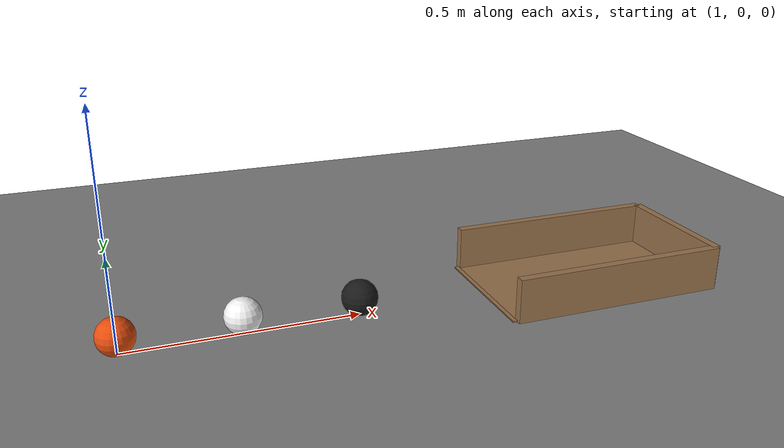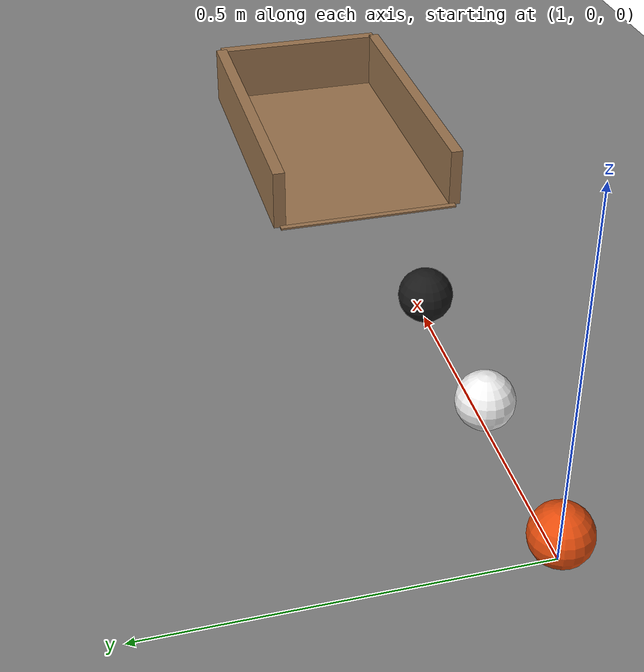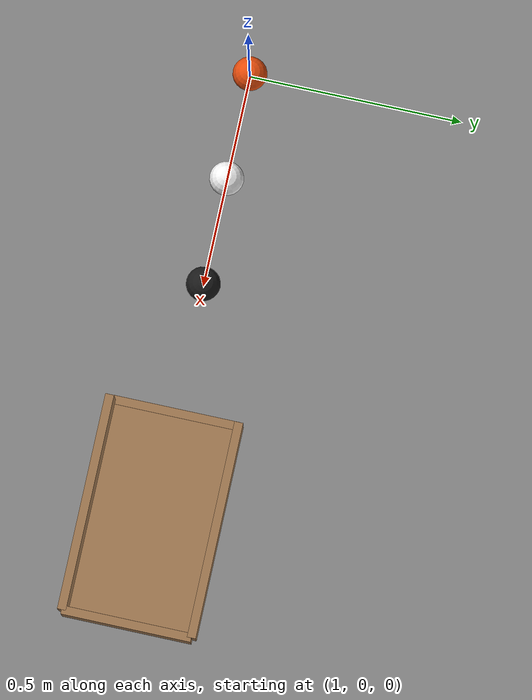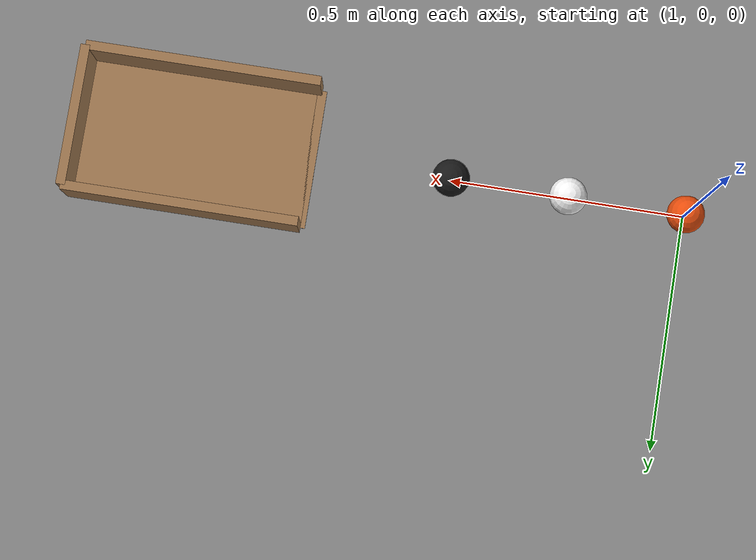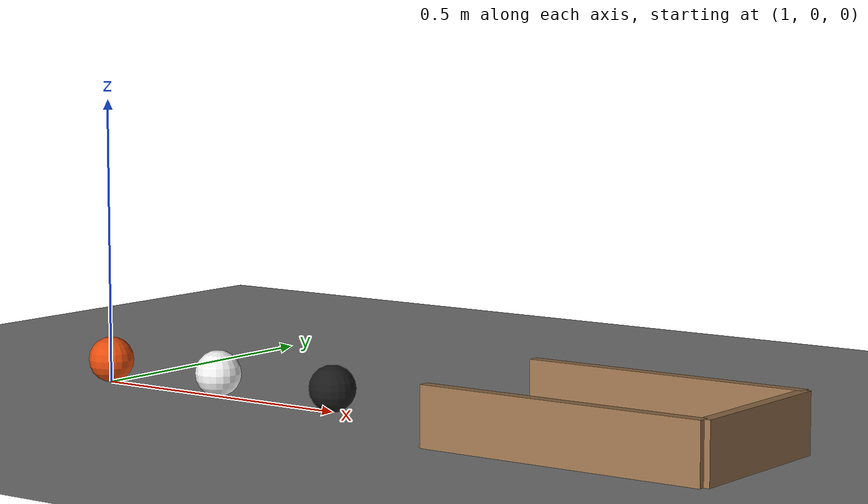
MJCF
<mujoco model="three_balls_into_a_cup">
  <compiler angle="radian"/>
  <option timestep="0.002"/>
  <worldbody>
    <geom name="floor" type="plane" size="6 6 0.1" friction="0.8 0.005 0.002"/>
    <body name="ball1" pos="1 0 0.04">
      <freejoint/>
      <geom name="ball1" type="sphere" pos="0 0 0" size="0.04" mass="0.1" condim="6" friction="0.8 0.005 0.002" solref="0.01 0.2" rgba="0.9 0.3 0.05 1"/>
    </body>
    <body name="ball2" pos="1.25 0 0.04">
      <freejoint/>
      <geom name="ball2" type="sphere" pos="0 0 0" size="0.04" mass="0.1" condim="6" friction="0.8 0.005 0.002" solref="0.01 0.2" rgba="0.95 0.95 0.95 1"/>
    </body>
    <body name="ball3" pos="1.5 0 0.04">
      <freejoint/>
      <geom name="ball3" type="sphere" pos="0 0 0" size="0.04" mass="0.1" condim="6" friction="0.8 0.005 0.002" solref="0.01 0.2" rgba="0.1 0.1 0.1 1"/>
    </body>
    <body name="cup">
      <geom name="cup_base" type="box" pos="2.05 0 0.0015" size="0.25 0.15 0.0015" friction="0.8 0.02 0.008" solref="0.01 1" rgba="0.6 0.45 0.3 1"/>
      <geom name="cup_near_wall" type="box" pos="1.8 0 0.0015" size="0.01 0.15 0.0015" friction="0.8 0.02 0.008" solref="0.01 1" rgba="0.6 0.45 0.3 1"/>
      <geom name="cup_far_wall" type="box" pos="2.3 0 0.05" size="0.01 0.15 0.05" friction="0.8 0.02 0.008" solref="0.01 1" rgba="0.6 0.45 0.3 1"/>
      <geom name="cup_left_wall" type="box" pos="2.05 0.15 0.05" size="0.25 0.01 0.05" friction="0.8 0.02 0.008" solref="0.01 1" rgba="0.6 0.45 0.3 1"/>
      <geom name="cup_right_wall" type="box" pos="2.05 -0.15 0.05" size="0.25 0.01 0.05" friction="0.8 0.02 0.008" solref="0.01 1" rgba="0.6 0.45 0.3 1"/>
    </body>
  </worldbody>
  <keyframe>
    <key name="start" qpos="1 0 0.04 1 0 0 0 1.25 0 0.04 1 0 0 0 1.5 0 0.04 1 0 0 0" qvel="4 0 0 0 100 0 0 0 0 0 0 0 0 0 0 0 0 0"/>
  </keyframe>
</mujoco>
